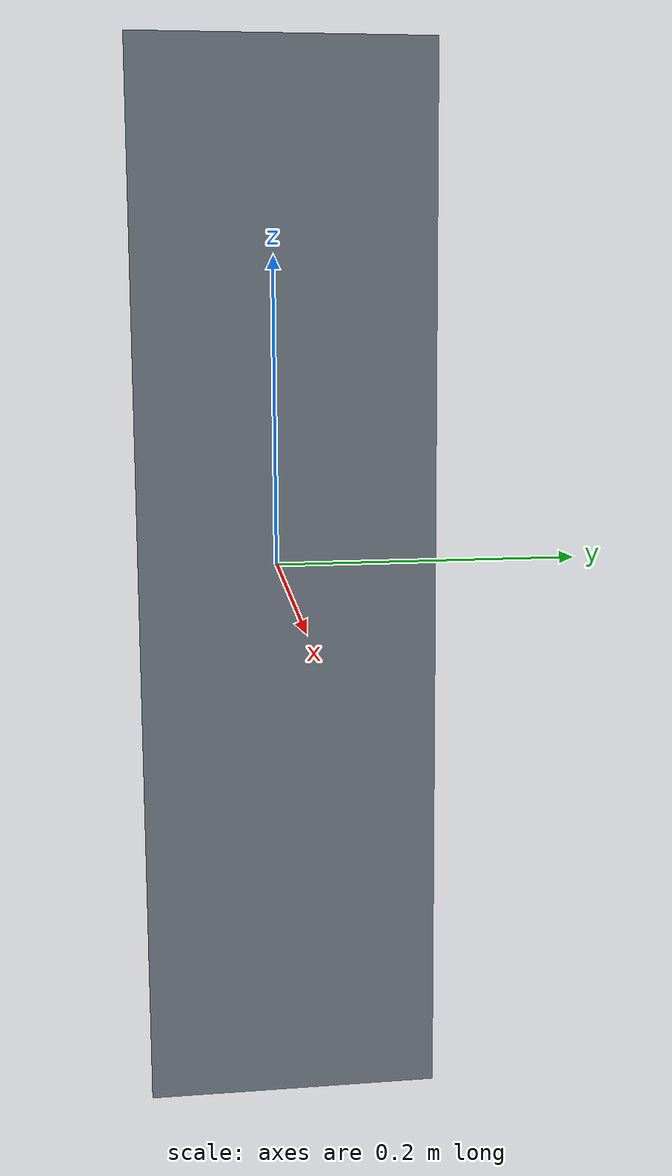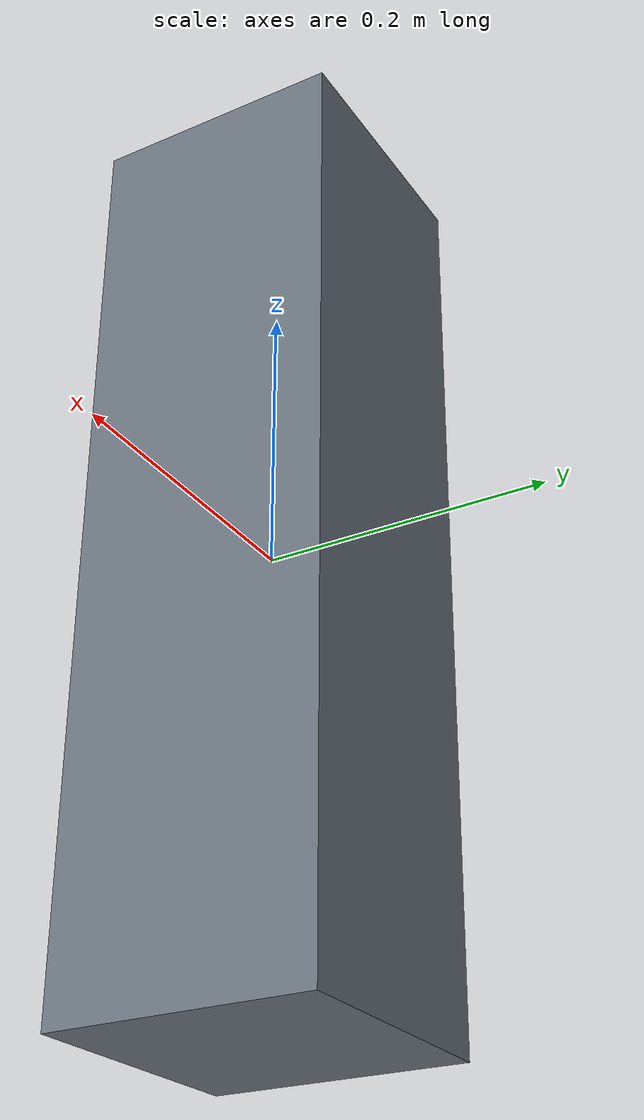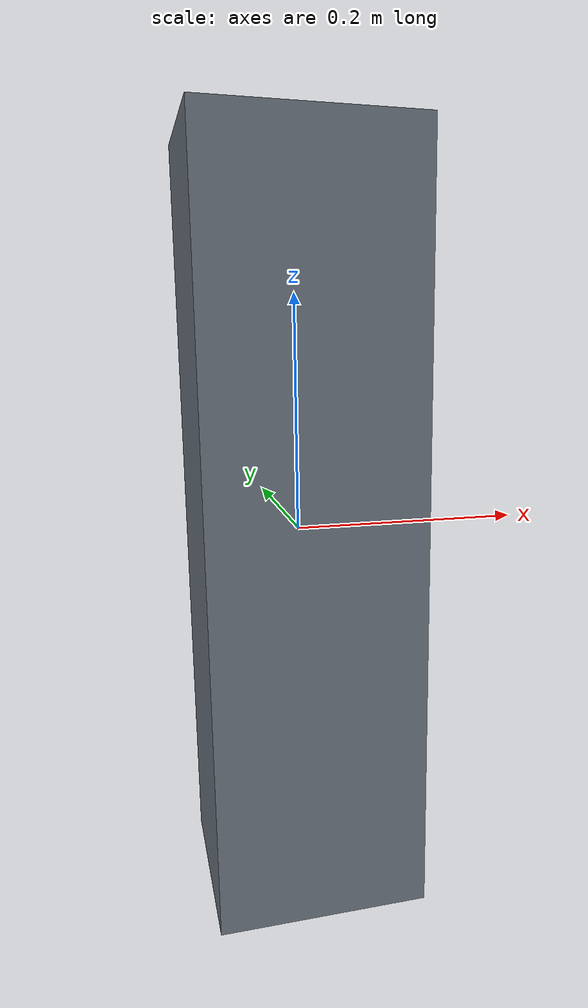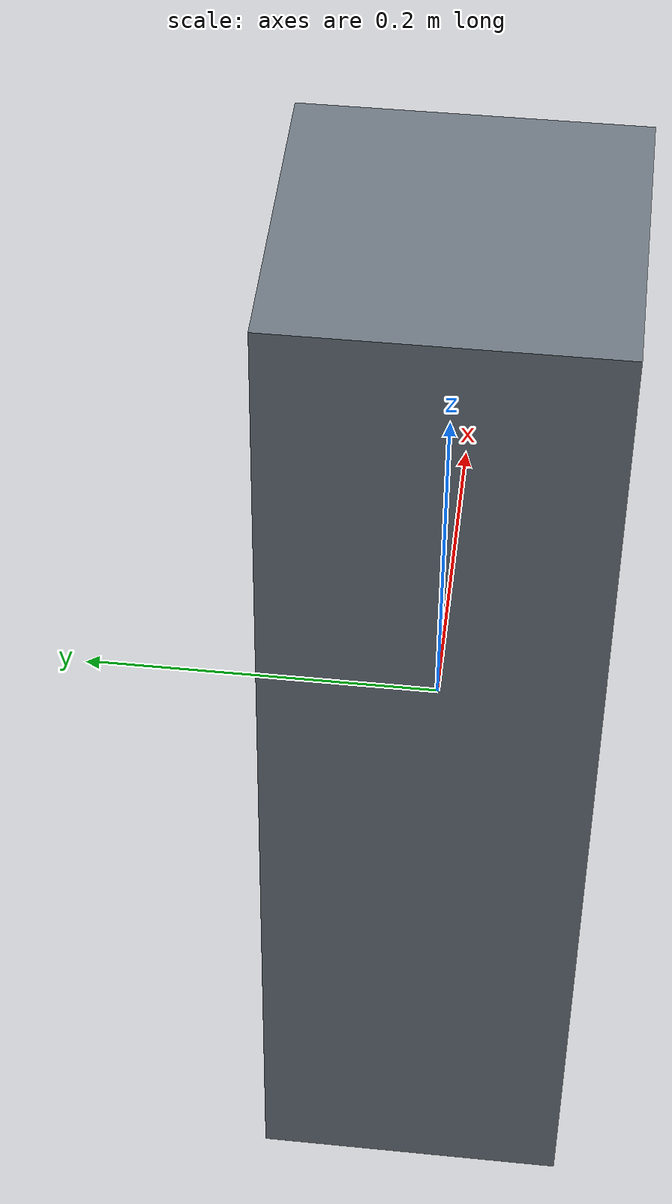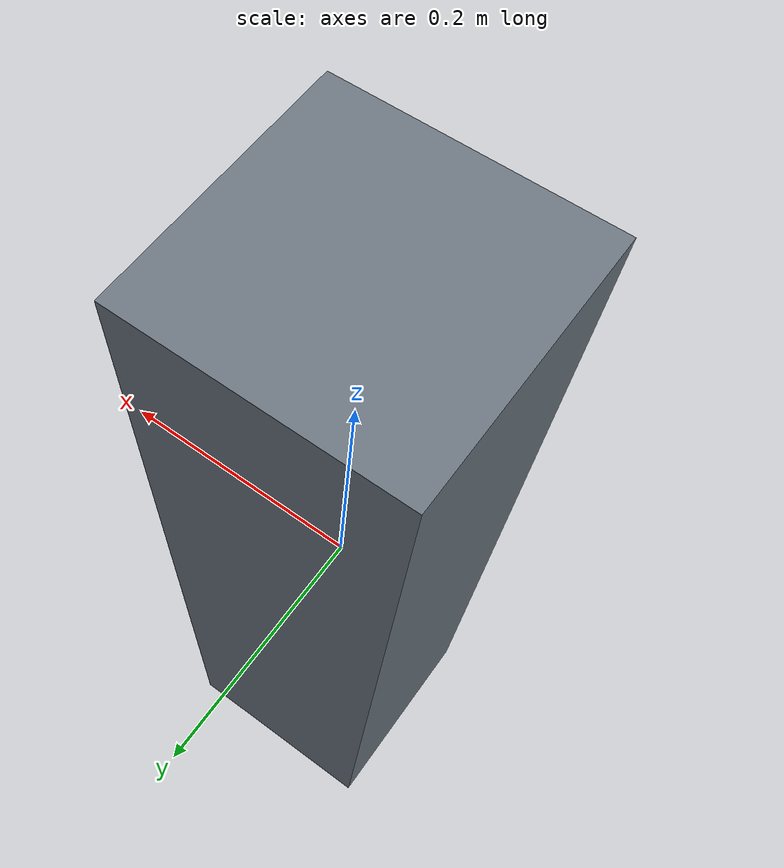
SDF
<?xml version="1.0"?><sdf version="1.6"><model name="robot_pedestal"><static>true</static><link name="pedestal"><collision name="collision"><geometry><box><size>0.18 0.18 0.65</size></box></geometry></collision><visual name="visual"><geometry><box><size>0.18 0.18 0.65</size></box></geometry><material><ambient>0.35 0.38 0.42 1</ambient><diffuse>0.42 0.46 0.50 1</diffuse></material></visual></link></model></sdf>
